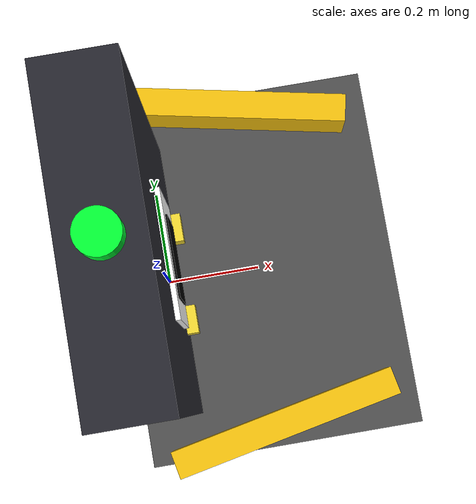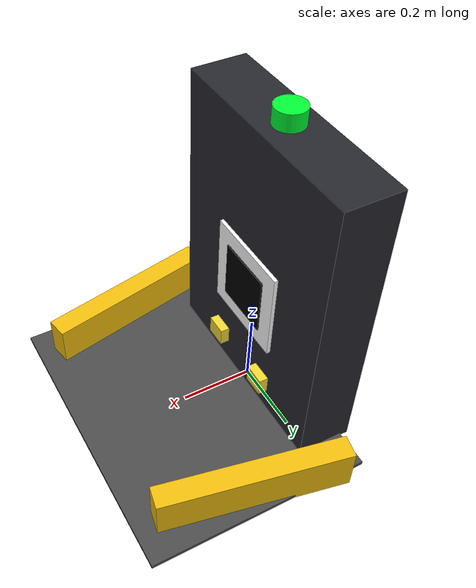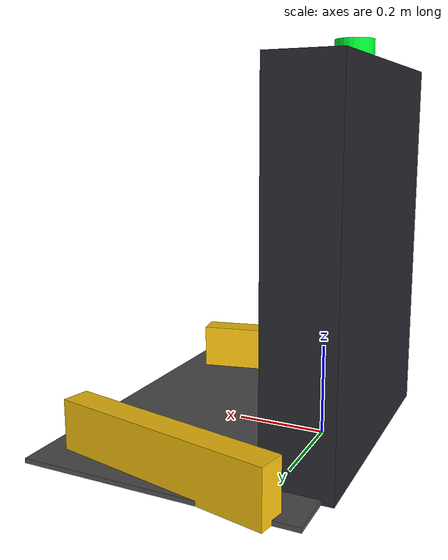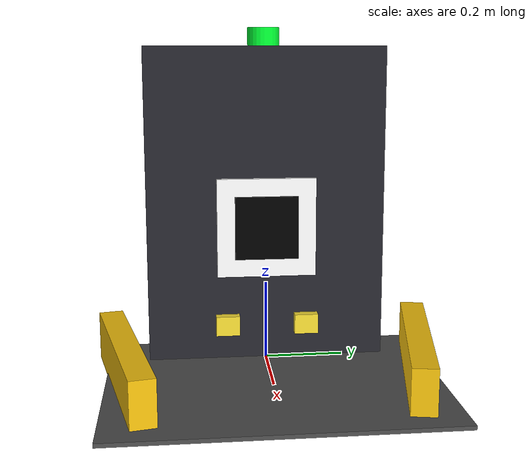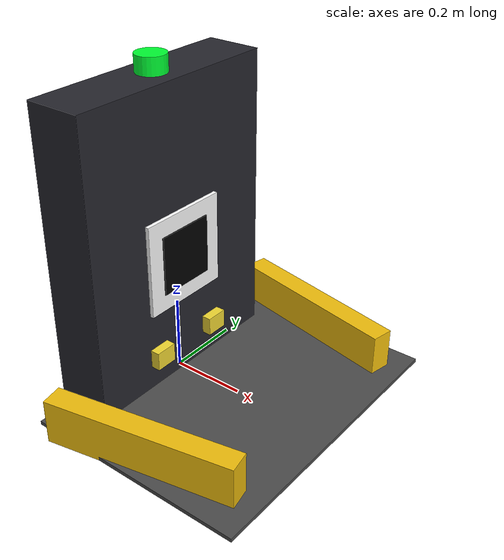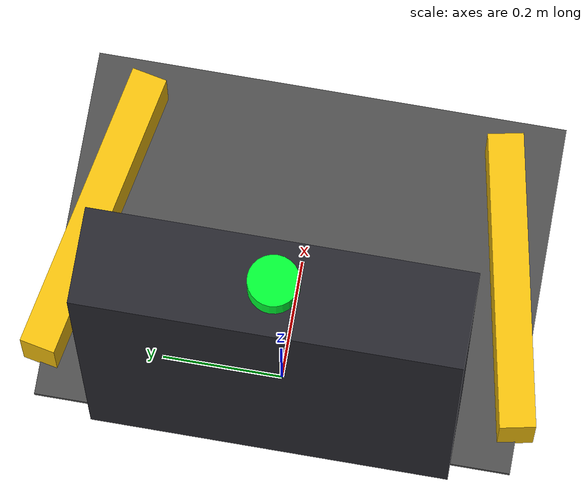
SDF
<?xml version="1.0" ?>
<sdf version="1.6">
  <model name="charging_dock">
    <static>true</static>
    <link name="dock_link">
      <!-- Base Floor Plate -->
      <visual name="base_plate_vis">
        <pose>0.2 0 0.005 0 0 0</pose>
        <geometry>
          <box><size>0.6 0.8 0.01</size></box>
        </geometry>
        <material>
          <ambient>0.2 0.2 0.2 1</ambient>
          <diffuse>0.3 0.3 0.3 1</diffuse>
        </material>
      </visual>

      <!-- Main Back Wall Column -->
      <visual name="column_vis">
        <pose>-0.05 0 0.4 0 0 0</pose>
        <geometry>
          <box><size>0.15 0.6 0.8</size></box>
        </geometry>
        <material>
          <ambient>0.1 0.1 0.12 1</ambient>
          <diffuse>0.15 0.15 0.18 1</diffuse>
        </material>
      </visual>
      <collision name="column_col">
        <pose>-0.05 0 0.4 0 0 0</pose>
        <geometry>
          <box><size>0.15 0.6 0.8</size></box>
        </geometry>
      </collision>

      <!-- Left Wheel Guide Funnel (Angled) -->
      <visual name="left_funnel_vis">
        <pose>0.2 0.35 0.06 0 0 -0.2</pose>
        <geometry>
          <box><size>0.5 0.06 0.12</size></box>
        </geometry>
        <material>
          <ambient>0.9 0.7 0.0 1</ambient>
          <diffuse>0.95 0.75 0.05 1</diffuse>
        </material>
      </visual>
      <collision name="left_funnel_col">
        <pose>0.2 0.35 0.06 0 0 -0.2</pose>
        <geometry>
          <box><size>0.5 0.06 0.12</size></box>
        </geometry>
      </collision>

      <!-- Right Wheel Guide Funnel (Angled) -->
      <visual name="right_funnel_vis">
        <pose>0.2 -0.35 0.06 0 0 0.2</pose>
        <geometry>
          <box><size>0.5 0.06 0.12</size></box>
        </geometry>
        <material>
          <ambient>0.9 0.7 0.0 1</ambient>
          <diffuse>0.95 0.75 0.05 1</diffuse>
        </material>
      </visual>
      <collision name="right_funnel_col">
        <pose>0.2 -0.35 0.06 0 0 0.2</pose>
        <geometry>
          <box><size>0.5 0.06 0.12</size></box>
        </geometry>
      </collision>

      <!-- Charging Terminals (Spring contacts) -->
      <visual name="charge_terminal_left_vis">
        <pose>0.03 0.10 0.10 0 0 0</pose>
        <geometry>
          <box><size>0.04 0.06 0.05</size></box>
        </geometry>
        <material>
          <ambient>0.9 0.8 0.1 1</ambient>
          <diffuse>0.95 0.85 0.2 1</diffuse>
        </material>
      </visual>
      <visual name="charge_terminal_right_vis">
        <pose>0.03 -0.10 0.10 0 0 0</pose>
        <geometry>
          <box><size>0.04 0.06 0.05</size></box>
        </geometry>
        <material>
          <ambient>0.9 0.8 0.1 1</ambient>
          <diffuse>0.95 0.85 0.2 1</diffuse>
        </material>
      </visual>

      <!-- Visual Fiducial / Marker Target Panel for Camera Recognition -->
      <visual name="fiducial_panel_vis">
        <pose>0.03 0 0.35 0 0 0</pose>
        <geometry>
          <box><size>0.01 0.25 0.25</size></box>
        </geometry>
        <material>
          <ambient>1 1 1 1</ambient>
          <diffuse>1 1 1 1</diffuse>
        </material>
      </visual>
      <!-- Visual Fiducial Black Center Square (ArUco / Tag pattern) -->
      <visual name="fiducial_marker_vis">
        <pose>0.036 0 0.35 0 0 0</pose>
        <geometry>
          <box><size>0.005 0.16 0.16</size></box>
        </geometry>
        <material>
          <ambient>0 0 0 1</ambient>
          <diffuse>0 0 0 1</diffuse>
        </material>
      </visual>

      <!-- Status Indicator Light (Green / Blue Glow) -->
      <visual name="status_light_vis">
        <pose>-0.05 0 0.82 0 0 0</pose>
        <geometry>
          <cylinder><radius>0.04</radius><length>0.05</length></cylinder>
        </geometry>
        <material>
          <ambient>0 1 0.2 1</ambient>
          <diffuse>0 1 0.2 1</diffuse>
          <emissive>0 0.8 0.2 1</emissive>
        </material>
      </visual>
    </link>
  </model>
</sdf>
